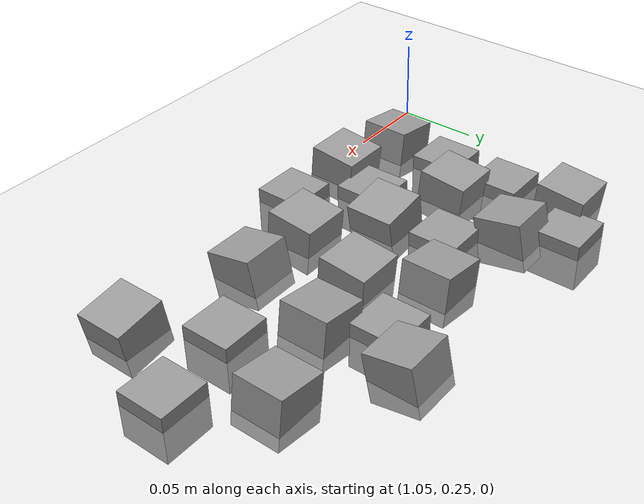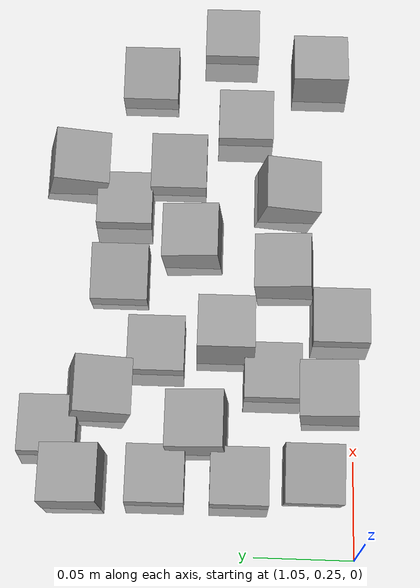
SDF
<sdf version="1.7">
 <world name="default">
  <model name="ground_plane">
   <static>1</static>
   <link name="link">
    <collision name="collision">
     <geometry><plane><normal>0 0 1</normal><size>100 100</size></plane></geometry>
     <surface><friction><ode><mu>100</mu><mu2>50</mu2></ode></friction></surface>
    </collision>
    <visual name="visual">
     <cast_shadows>0</cast_shadows>
     <geometry><plane><normal>0 0 1</normal><size>100 100</size></plane></geometry>
     <material>
      <script><uri>file://media/materials/scripts/gazebo.material</uri><name>Gazebo/Grey</name></script>
     </material>
    </visual>
   </link>
  </model>
  <model name="stone_road_11">
   <link name="link_0_clone_11">
    <inertial>
     <mass>1</mass>
     <inertia>
      <ixx>0.166667</ixx>
      <ixy>0</ixy>
      <ixz>0</ixz>
      <iyy>0.166667</iyy>
      <iyz>0</iyz>
      <izz>0.166667</izz>
     </inertia>
    </inertial>
    <pose>0.007758 0.071496 0.003778 0.2 -0 0</pose>
    <kinematic>1</kinematic>
    <visual name="visual">
     <geometry><box><size>0.03 0.03 0.03</size></box></geometry>
     <material>
      <lighting>1</lighting>
      <script><uri>file://media/materials/scripts/gazebo.material</uri><name>Gazebo/Grey</name></script>
      <shader type="pixel"><normal_map>__default__</normal_map></shader>
      <ambient>0.3 0.3 0.3 1</ambient>
      <diffuse>0.7 0.7 0.7 1</diffuse>
      <specular>0.01 0.01 0.01 1</specular>
      <emissive>0 0 0 1</emissive>
     </material>
    </visual>
    <collision name="collision">
     <geometry><box><size>0.03 0.03 0.03</size></box></geometry>
     <surface>
      <friction>
       <ode><mu>1</mu><mu2>1</mu2><fdir1>0 0 0</fdir1><slip1>0</slip1><slip2>0</slip2></ode>
       <torsional>
        <coefficient>1</coefficient>
        <patch_radius>0</patch_radius>
        <surface_radius>0</surface_radius>
        <use_patch_radius>1</use_patch_radius>
        <ode><slip>0</slip></ode>
       </torsional>
      </friction>
      <bounce><restitution_coefficient>0</restitution_coefficient><threshold>1e+06</threshold></bounce>
      <contact>
       <collide_without_contact>0</collide_without_contact>
       <collide_without_contact_bitmask>1</collide_without_contact_bitmask>
       <collide_bitmask>1</collide_bitmask>
       <ode>
        <soft_cfm>0</soft_cfm>
        <soft_erp>0.2</soft_erp>
        <kp>1e+13</kp>
        <kd>1</kd>
        <max_vel>0.01</max_vel>
        <min_depth>0</min_depth>
       </ode>
       <bullet>
        <split_impulse>1</split_impulse>
        <split_impulse_penetration_threshold>-0.01</split_impulse_penetration_threshold>
        <soft_cfm>0</soft_cfm>
        <soft_erp>0.2</soft_erp>
        <kp>1e+13</kp>
        <kd>1</kd>
       </bullet>
      </contact>
     </surface>
    </collision>
   </link>
   <link name="link_0_clone_2_clone_1">
    <inertial>
     <mass>1</mass>
     <inertia>
      <ixx>0.166667</ixx>
      <ixy>0</ixy>
      <ixz>0</ixz>
      <iyy>0.166667</iyy>
      <iyz>0</iyz>
      <izz>0.166667</izz>
     </inertia>
    </inertial>
    <pose>0.041447 0.006316 0.003778 0 0.15 0</pose>
    <kinematic>1</kinematic>
    <visual name="visual">
     <geometry><box><size>0.03 0.03 0.03</size></box></geometry>
     <material>
      <lighting>1</lighting>
      <script><uri>file://media/materials/scripts/gazebo.material</uri><name>Gazebo/Grey</name></script>
      <shader type="pixel"><normal_map>__default__</normal_map></shader>
      <ambient>0.3 0.3 0.3 1</ambient>
      <diffuse>0.7 0.7 0.7 1</diffuse>
      <specular>0.01 0.01 0.01 1</specular>
      <emissive>0 0 0 1</emissive>
     </material>
    </visual>
    <collision name="collision">
     <geometry><box><size>0.03 0.03 0.03</size></box></geometry>
     <surface>
      <friction>
       <ode><mu>1</mu><mu2>1</mu2><fdir1>0 0 0</fdir1><slip1>0</slip1><slip2>0</slip2></ode>
       <torsional>
        <coefficient>1</coefficient>
        <patch_radius>0</patch_radius>
        <surface_radius>0</surface_radius>
        <use_patch_radius>1</use_patch_radius>
        <ode><slip>0</slip></ode>
       </torsional>
      </friction>
      <bounce><restitution_coefficient>0</restitution_coefficient><threshold>1e+06</threshold></bounce>
      <contact>
       <collide_without_contact>0</collide_without_contact>
       <collide_without_contact_bitmask>1</collide_without_contact_bitmask>
       <collide_bitmask>1</collide_bitmask>
       <ode>
        <soft_cfm>0</soft_cfm>
        <soft_erp>0.2</soft_erp>
        <kp>1e+13</kp>
        <kd>1</kd>
        <max_vel>0.01</max_vel>
        <min_depth>0</min_depth>
       </ode>
       <bullet>
        <split_impulse>1</split_impulse>
        <split_impulse_penetration_threshold>-0.01</split_impulse_penetration_threshold>
        <soft_cfm>0</soft_cfm>
        <soft_erp>0.2</soft_erp>
        <kp>1e+13</kp>
        <kd>1</kd>
       </bullet>
      </contact>
     </surface>
    </collision>
   </link>
   <link name="link_0_clone_2_clone_2_clone">
    <inertial>
     <mass>1</mass>
     <inertia>
      <ixx>0.166667</ixx>
      <ixy>0</ixy>
      <ixz>0</ixz>
      <iyy>0.166667</iyy>
      <iyz>0</iyz>
      <izz>0.166667</izz>
     </inertia>
    </inertial>
    <pose>0.189059 0.051135 0.003778 0 -0.15 0</pose>
    <kinematic>1</kinematic>
    <visual name="visual">
     <geometry><box><size>0.03 0.03 0.03</size></box></geometry>
     <material>
      <lighting>1</lighting>
      <script><uri>file://media/materials/scripts/gazebo.material</uri><name>Gazebo/Grey</name></script>
      <shader type="pixel"><normal_map>__default__</normal_map></shader>
      <ambient>0.3 0.3 0.3 1</ambient>
      <diffuse>0.7 0.7 0.7 1</diffuse>
      <specular>0.01 0.01 0.01 1</specular>
      <emissive>0 0 0 1</emissive>
     </material>
    </visual>
    <collision name="collision">
     <geometry><box><size>0.03 0.03 0.03</size></box></geometry>
     <surface>
      <friction>
       <ode><mu>1</mu><mu2>1</mu2><fdir1>0 0 0</fdir1><slip1>0</slip1><slip2>0</slip2></ode>
       <torsional>
        <coefficient>1</coefficient>
        <patch_radius>0</patch_radius>
        <surface_radius>0</surface_radius>
        <use_patch_radius>1</use_patch_radius>
        <ode><slip>0</slip></ode>
       </torsional>
      </friction>
      <bounce><restitution_coefficient>0</restitution_coefficient><threshold>1e+06</threshold></bounce>
      <contact>
       <collide_without_contact>0</collide_without_contact>
       <collide_without_contact_bitmask>1</collide_without_contact_bitmask>
       <collide_bitmask>1</collide_bitmask>
       <ode>
        <soft_cfm>0</soft_cfm>
        <soft_erp>0.2</soft_erp>
        <kp>1e+13</kp>
        <kd>1</kd>
        <max_vel>0.01</max_vel>
        <min_depth>0</min_depth>
       </ode>
       <bullet>
        <split_impulse>1</split_impulse>
        <split_impulse_penetration_threshold>-0.01</split_impulse_penetration_threshold>
        <soft_cfm>0</soft_cfm>
        <soft_erp>0.2</soft_erp>
        <kp>1e+13</kp>
        <kd>1</kd>
       </bullet>
      </contact>
     </surface>
    </collision>
   </link>
   <link name="link_0_clone_2_clone_2_clone_0">
    <inertial>
     <mass>1</mass>
     <inertia>
      <ixx>0.166667</ixx>
      <ixy>0</ixy>
      <ixz>0</ixz>
      <iyy>0.166667</iyy>
      <iyz>0</iyz>
      <izz>0.166667</izz>
     </inertia>
    </inertial>
    <pose>-0.032874 -0.039714 0.003778 0 -0.15 0</pose>
    <kinematic>1</kinematic>
    <visual name="visual">
     <geometry><box><size>0.03 0.03 0.03</size></box></geometry>
     <material>
      <lighting>1</lighting>
      <script><uri>file://media/materials/scripts/gazebo.material</uri><name>Gazebo/Grey</name></script>
      <shader type="pixel"><normal_map>__default__</normal_map></shader>
      <ambient>0.3 0.3 0.3 1</ambient>
      <diffuse>0.7 0.7 0.7 1</diffuse>
      <specular>0.01 0.01 0.01 1</specular>
      <emissive>0 0 0 1</emissive>
     </material>
    </visual>
    <collision name="collision">
     <geometry><box><size>0.03 0.03 0.03</size></box></geometry>
     <surface>
      <friction>
       <ode><mu>1</mu><mu2>1</mu2><fdir1>0 0 0</fdir1><slip1>0</slip1><slip2>0</slip2></ode>
       <torsional>
        <coefficient>1</coefficient>
        <patch_radius>0</patch_radius>
        <surface_radius>0</surface_radius>
        <use_patch_radius>1</use_patch_radius>
        <ode><slip>0</slip></ode>
       </torsional>
      </friction>
      <bounce><restitution_coefficient>0</restitution_coefficient><threshold>1e+06</threshold></bounce>
      <contact>
       <collide_without_contact>0</collide_without_contact>
       <collide_without_contact_bitmask>1</collide_without_contact_bitmask>
       <collide_bitmask>1</collide_bitmask>
       <ode>
        <soft_cfm>0</soft_cfm>
        <soft_erp>0.2</soft_erp>
        <kp>1e+13</kp>
        <kd>1</kd>
        <max_vel>0.01</max_vel>
        <min_depth>0</min_depth>
       </ode>
       <bullet>
        <split_impulse>1</split_impulse>
        <split_impulse_penetration_threshold>-0.01</split_impulse_penetration_threshold>
        <soft_cfm>0</soft_cfm>
        <soft_erp>0.2</soft_erp>
        <kp>1e+13</kp>
        <kd>1</kd>
       </bullet>
      </contact>
     </surface>
    </collision>
   </link>
   <link name="link_0_clone_2_clone_2_clone_13_clone_clone_0">
    <inertial>
     <mass>1</mass>
     <inertia>
      <ixx>0.166667</ixx>
      <ixy>0</ixy>
      <ixz>0</ixz>
      <iyy>0.166667</iyy>
      <iyz>0</iyz>
      <izz>0.166667</izz>
     </inertia>
    </inertial>
    <pose>0.094072 0.02539 0.003778 -0.1 0 0</pose>
    <kinematic>1</kinematic>
    <visual name="visual">
     <geometry><box><size>0.03 0.03 0.03</size></box></geometry>
     <material>
      <lighting>1</lighting>
      <script><uri>file://media/materials/scripts/gazebo.material</uri><name>Gazebo/Grey</name></script>
      <shader type="pixel"><normal_map>__default__</normal_map></shader>
      <ambient>0.3 0.3 0.3 1</ambient>
      <diffuse>0.7 0.7 0.7 1</diffuse>
      <specular>0.01 0.01 0.01 1</specular>
      <emissive>0 0 0 1</emissive>
     </material>
    </visual>
    <collision name="collision">
     <geometry><box><size>0.03 0.03 0.03</size></box></geometry>
     <surface>
      <friction>
       <ode><mu>1</mu><mu2>1</mu2><fdir1>0 0 0</fdir1><slip1>0</slip1><slip2>0</slip2></ode>
       <torsional>
        <coefficient>1</coefficient>
        <patch_radius>0</patch_radius>
        <surface_radius>0</surface_radius>
        <use_patch_radius>1</use_patch_radius>
        <ode><slip>0</slip></ode>
       </torsional>
      </friction>
      <bounce><restitution_coefficient>0</restitution_coefficient><threshold>1e+06</threshold></bounce>
      <contact>
       <collide_without_contact>0</collide_without_contact>
       <collide_without_contact_bitmask>1</collide_without_contact_bitmask>
       <collide_bitmask>1</collide_bitmask>
       <ode>
        <soft_cfm>0</soft_cfm>
        <soft_erp>0.2</soft_erp>
        <kp>1e+13</kp>
        <kd>1</kd>
        <max_vel>0.01</max_vel>
        <min_depth>0</min_depth>
       </ode>
       <bullet>
        <split_impulse>1</split_impulse>
        <split_impulse_penetration_threshold>-0.01</split_impulse_penetration_threshold>
        <soft_cfm>0</soft_cfm>
        <soft_erp>0.2</soft_erp>
        <kp>1e+13</kp>
        <kd>1</kd>
       </bullet>
      </contact>
     </surface>
    </collision>
   </link>
   <link name="link_0_clone_2_clone_2_clone_13_clone_clone_16_clone_0">
    <inertial>
     <mass>1</mass>
     <inertia>
      <ixx>0.166667</ixx>
      <ixy>0</ixy>
      <ixz>0</ixz>
      <iyy>0.166667</iyy>
      <iyz>0</iyz>
      <izz>0.166667</izz>
     </inertia>
    </inertial>
    <pose>-0.010782 0.09679 -0.006222 0 -0 0</pose>
    <kinematic>1</kinematic>
    <visual name="visual">
     <geometry><box><size>0.03 0.03 0.03</size></box></geometry>
     <material>
      <lighting>1</lighting>
      <script><uri>file://media/materials/scripts/gazebo.material</uri><name>Gazebo/Grey</name></script>
      <shader type="pixel"><normal_map>__default__</normal_map></shader>
      <ambient>0.3 0.3 0.3 1</ambient>
      <diffuse>0.7 0.7 0.7 1</diffuse>
      <specular>0.01 0.01 0.01 1</specular>
      <emissive>0 0 0 1</emissive>
     </material>
    </visual>
    <collision name="collision">
     <geometry><box><size>0.03 0.03 0.03</size></box></geometry>
     <surface>
      <friction>
       <ode><mu>1</mu><mu2>1</mu2><fdir1>0 0 0</fdir1><slip1>0</slip1><slip2>0</slip2></ode>
       <torsional>
        <coefficient>1</coefficient>
        <patch_radius>0</patch_radius>
        <surface_radius>0</surface_radius>
        <use_patch_radius>1</use_patch_radius>
        <ode><slip>0</slip></ode>
       </torsional>
      </friction>
      <bounce><restitution_coefficient>0</restitution_coefficient><threshold>1e+06</threshold></bounce>
      <contact>
       <collide_without_contact>0</collide_without_contact>
       <collide_without_contact_bitmask>1</collide_without_contact_bitmask>
       <collide_bitmask>1</collide_bitmask>
       <ode>
        <soft_cfm>0</soft_cfm>
        <soft_erp>0.2</soft_erp>
        <kp>1e+13</kp>
        <kd>1</kd>
        <max_vel>0.01</max_vel>
        <min_depth>0</min_depth>
       </ode>
       <bullet>
        <split_impulse>1</split_impulse>
        <split_impulse_penetration_threshold>-0.01</split_impulse_penetration_threshold>
        <soft_cfm>0</soft_cfm>
        <soft_erp>0.2</soft_erp>
        <kp>1e+13</kp>
        <kd>1</kd>
       </bullet>
      </contact>
     </surface>
    </collision>
   </link>
   <link name="link_0_clone_2_clone_2_clone_13_clone_clone_16_clone_1">
    <inertial>
     <mass>1</mass>
     <inertia>
      <ixx>0.166667</ixx>
      <ixy>0</ixy>
      <ixz>0</ixz>
      <iyy>0.166667</iyy>
      <iyz>0</iyz>
      <izz>0.166667</izz>
     </inertia>
    </inertial>
    <pose>0.033787 0.042837 -0.006222 0 -0 0</pose>
    <kinematic>1</kinematic>
    <visual name="visual">
     <geometry><box><size>0.03 0.03 0.03</size></box></geometry>
     <material>
      <lighting>1</lighting>
      <script><uri>file://media/materials/scripts/gazebo.material</uri><name>Gazebo/Grey</name></script>
      <shader type="pixel"><normal_map>__default__</normal_map></shader>
      <ambient>0.3 0.3 0.3 1</ambient>
      <diffuse>0.7 0.7 0.7 1</diffuse>
      <specular>0.01 0.01 0.01 1</specular>
      <emissive>0 0 0 1</emissive>
     </material>
    </visual>
    <collision name="collision">
     <geometry><box><size>0.03 0.03 0.03</size></box></geometry>
     <surface>
      <friction>
       <ode><mu>1</mu><mu2>1</mu2><fdir1>0 0 0</fdir1><slip1>0</slip1><slip2>0</slip2></ode>
       <torsional>
        <coefficient>1</coefficient>
        <patch_radius>0</patch_radius>
        <surface_radius>0</surface_radius>
        <use_patch_radius>1</use_patch_radius>
        <ode><slip>0</slip></ode>
       </torsional>
      </friction>
      <bounce><restitution_coefficient>0</restitution_coefficient><threshold>1e+06</threshold></bounce>
      <contact>
       <collide_without_contact>0</collide_without_contact>
       <collide_without_contact_bitmask>1</collide_without_contact_bitmask>
       <collide_bitmask>1</collide_bitmask>
       <ode>
        <soft_cfm>0</soft_cfm>
        <soft_erp>0.2</soft_erp>
        <kp>1e+13</kp>
        <kd>1</kd>
        <max_vel>0.01</max_vel>
        <min_depth>0</min_depth>
       </ode>
       <bullet>
        <split_impulse>1</split_impulse>
        <split_impulse_penetration_threshold>-0.01</split_impulse_penetration_threshold>
        <soft_cfm>0</soft_cfm>
        <soft_erp>0.2</soft_erp>
        <kp>1e+13</kp>
        <kd>1</kd>
       </bullet>
      </contact>
     </surface>
    </collision>
   </link>
   <link name="link_0_clone_2_clone_2_clone_13_clone_clone_16_clone_13">
    <inertial>
     <mass>1</mass>
     <inertia>
      <ixx>0.166667</ixx>
      <ixy>0</ixy>
      <ixz>0</ixz>
      <iyy>0.166667</iyy>
      <iyz>0</iyz>
      <izz>0.166667</izz>
     </inertia>
    </inertial>
    <pose>0.168013 -0.00203 -0.006222 0 -0 0</pose>
    <kinematic>1</kinematic>
    <visual name="visual">
     <geometry><box><size>0.03 0.03 0.03</size></box></geometry>
     <material>
      <lighting>1</lighting>
      <script><uri>file://media/materials/scripts/gazebo.material</uri><name>Gazebo/Grey</name></script>
      <shader type="pixel"><normal_map>__default__</normal_map></shader>
      <ambient>0.3 0.3 0.3 1</ambient>
      <diffuse>0.7 0.7 0.7 1</diffuse>
      <specular>0.01 0.01 0.01 1</specular>
      <emissive>0 0 0 1</emissive>
     </material>
    </visual>
    <collision name="collision">
     <geometry><box><size>0.03 0.03 0.03</size></box></geometry>
     <surface>
      <friction>
       <ode><mu>1</mu><mu2>1</mu2><fdir1>0 0 0</fdir1><slip1>0</slip1><slip2>0</slip2></ode>
       <torsional>
        <coefficient>1</coefficient>
        <patch_radius>0</patch_radius>
        <surface_radius>0</surface_radius>
        <use_patch_radius>1</use_patch_radius>
        <ode><slip>0</slip></ode>
       </torsional>
      </friction>
      <bounce><restitution_coefficient>0</restitution_coefficient><threshold>1e+06</threshold></bounce>
      <contact>
       <collide_without_contact>0</collide_without_contact>
       <collide_without_contact_bitmask>1</collide_without_contact_bitmask>
       <collide_bitmask>1</collide_bitmask>
       <ode>
        <soft_cfm>0</soft_cfm>
        <soft_erp>0.2</soft_erp>
        <kp>1e+13</kp>
        <kd>1</kd>
        <max_vel>0.01</max_vel>
        <min_depth>0</min_depth>
       </ode>
       <bullet>
        <split_impulse>1</split_impulse>
        <split_impulse_penetration_threshold>-0.01</split_impulse_penetration_threshold>
        <soft_cfm>0</soft_cfm>
        <soft_erp>0.2</soft_erp>
        <kp>1e+13</kp>
        <kd>1</kd>
       </bullet>
      </contact>
     </surface>
    </collision>
   </link>
   <link name="link_0_clone_2_clone_2_clone_13_clone_clone_16_clone_14">
    <inertial>
     <mass>1</mass>
     <inertia>
      <ixx>0.166667</ixx>
      <ixy>0</ixy>
      <ixz>0</ixz>
      <iyy>0.166667</iyy>
      <iyz>0</iyz>
      <izz>0.166667</izz>
     </inertia>
    </inertial>
    <pose>0.051911 -0.054424 -0.006222 0 -0 0</pose>
    <kinematic>1</kinematic>
    <visual name="visual">
     <geometry><box><size>0.03 0.03 0.03</size></box></geometry>
     <material>
      <lighting>1</lighting>
      <script><uri>file://media/materials/scripts/gazebo.material</uri><name>Gazebo/Grey</name></script>
      <shader type="pixel"><normal_map>__default__</normal_map></shader>
      <ambient>0.3 0.3 0.3 1</ambient>
      <diffuse>0.7 0.7 0.7 1</diffuse>
      <specular>0.01 0.01 0.01 1</specular>
      <emissive>0 0 0 1</emissive>
     </material>
    </visual>
    <collision name="collision">
     <geometry><box><size>0.03 0.03 0.03</size></box></geometry>
     <surface>
      <friction>
       <ode><mu>1</mu><mu2>1</mu2><fdir1>0 0 0</fdir1><slip1>0</slip1><slip2>0</slip2></ode>
       <torsional>
        <coefficient>1</coefficient>
        <patch_radius>0</patch_radius>
        <surface_radius>0</surface_radius>
        <use_patch_radius>1</use_patch_radius>
        <ode><slip>0</slip></ode>
       </torsional>
      </friction>
      <bounce><restitution_coefficient>0</restitution_coefficient><threshold>1e+06</threshold></bounce>
      <contact>
       <collide_without_contact>0</collide_without_contact>
       <collide_without_contact_bitmask>1</collide_without_contact_bitmask>
       <collide_bitmask>1</collide_bitmask>
       <ode>
        <soft_cfm>0</soft_cfm>
        <soft_erp>0.2</soft_erp>
        <kp>1e+13</kp>
        <kd>1</kd>
        <max_vel>0.01</max_vel>
        <min_depth>0</min_depth>
       </ode>
       <bullet>
        <split_impulse>1</split_impulse>
        <split_impulse_penetration_threshold>-0.01</split_impulse_penetration_threshold>
        <soft_cfm>0</soft_cfm>
        <soft_erp>0.2</soft_erp>
        <kp>1e+13</kp>
        <kd>1</kd>
       </bullet>
      </contact>
     </surface>
    </collision>
   </link>
   <link name="link_0_clone_2_clone_2_clone_13_clone_clone_16_clone_19">
    <inertial>
     <mass>1</mass>
     <inertia>
      <ixx>0.166667</ixx>
      <ixy>0</ixy>
      <ixz>0</ixz>
      <iyy>0.166667</iyy>
      <iyz>0</iyz>
      <izz>0.166667</izz>
     </inertia>
    </inertial>
    <pose>0.219442 0.006622 -0.006222 0 -0 0</pose>
    <kinematic>1</kinematic>
    <visual name="visual">
     <geometry><box><size>0.03 0.03 0.03</size></box></geometry>
     <material>
      <lighting>1</lighting>
      <script><uri>file://media/materials/scripts/gazebo.material</uri><name>Gazebo/Grey</name></script>
      <shader type="pixel"><normal_map>__default__</normal_map></shader>
      <ambient>0.3 0.3 0.3 1</ambient>
      <diffuse>0.7 0.7 0.7 1</diffuse>
      <specular>0.01 0.01 0.01 1</specular>
      <emissive>0 0 0 1</emissive>
     </material>
    </visual>
    <collision name="collision">
     <geometry><box><size>0.03 0.03 0.03</size></box></geometry>
     <surface>
      <friction>
       <ode><mu>1</mu><mu2>1</mu2><fdir1>0 0 0</fdir1><slip1>0</slip1><slip2>0</slip2></ode>
       <torsional>
        <coefficient>1</coefficient>
        <patch_radius>0</patch_radius>
        <surface_radius>0</surface_radius>
        <use_patch_radius>1</use_patch_radius>
        <ode><slip>0</slip></ode>
       </torsional>
      </friction>
      <bounce><restitution_coefficient>0</restitution_coefficient><threshold>1e+06</threshold></bounce>
      <contact>
       <collide_without_contact>0</collide_without_contact>
       <collide_without_contact_bitmask>1</collide_without_contact_bitmask>
       <collide_bitmask>1</collide_bitmask>
       <ode>
        <soft_cfm>0</soft_cfm>
        <soft_erp>0.2</soft_erp>
        <kp>1e+13</kp>
        <kd>1</kd>
        <max_vel>0.01</max_vel>
        <min_depth>0</min_depth>
       </ode>
       <bullet>
        <split_impulse>1</split_impulse>
        <split_impulse_penetration_threshold>-0.01</split_impulse_penetration_threshold>
        <soft_cfm>0</soft_cfm>
        <soft_erp>0.2</soft_erp>
        <kp>1e+13</kp>
        <kd>1</kd>
       </bullet>
      </contact>
     </surface>
    </collision>
   </link>
   <link name="link_0_clone_2_clone_2_clone_13_clone_clone_16_clone_2">
    <inertial>
     <mass>1</mass>
     <inertia>
      <ixx>0.166667</ixx>
      <ixy>0</ixy>
      <ixz>0</ixz>
      <iyy>0.166667</iyy>
      <iyz>0</iyz>
      <izz>0.166667</izz>
     </inertia>
    </inertial>
    <pose>-0.035128 0.040728 -0.006222 0 -0 0</pose>
    <kinematic>1</kinematic>
    <visual name="visual">
     <geometry><box><size>0.03 0.03 0.03</size></box></geometry>
     <material>
      <lighting>1</lighting>
      <script><uri>file://media/materials/scripts/gazebo.material</uri><name>Gazebo/Grey</name></script>
      <shader type="pixel"><normal_map>__default__</normal_map></shader>
      <ambient>0.3 0.3 0.3 1</ambient>
      <diffuse>0.7 0.7 0.7 1</diffuse>
      <specular>0.01 0.01 0.01 1</specular>
      <emissive>0 0 0 1</emissive>
     </material>
    </visual>
    <collision name="collision">
     <geometry><box><size>0.03 0.03 0.03</size></box></geometry>
     <surface>
      <friction>
       <ode><mu>1</mu><mu2>1</mu2><fdir1>0 0 0</fdir1><slip1>0</slip1><slip2>0</slip2></ode>
       <torsional>
        <coefficient>1</coefficient>
        <patch_radius>0</patch_radius>
        <surface_radius>0</surface_radius>
        <use_patch_radius>1</use_patch_radius>
        <ode><slip>0</slip></ode>
       </torsional>
      </friction>
      <bounce><restitution_coefficient>0</restitution_coefficient><threshold>1e+06</threshold></bounce>
      <contact>
       <collide_without_contact>0</collide_without_contact>
       <collide_without_contact_bitmask>1</collide_without_contact_bitmask>
       <collide_bitmask>1</collide_bitmask>
       <ode>
        <soft_cfm>0</soft_cfm>
        <soft_erp>0.2</soft_erp>
        <kp>1e+13</kp>
        <kd>1</kd>
        <max_vel>0.01</max_vel>
        <min_depth>0</min_depth>
       </ode>
       <bullet>
        <split_impulse>1</split_impulse>
        <split_impulse_penetration_threshold>-0.01</split_impulse_penetration_threshold>
        <soft_cfm>0</soft_cfm>
        <soft_erp>0.2</soft_erp>
        <kp>1e+13</kp>
        <kd>1</kd>
       </bullet>
      </contact>
     </surface>
    </collision>
   </link>
   <link name="link_0_clone_2_clone_2_clone_13_clone_clone_16_clone_20">
    <inertial>
     <mass>1</mass>
     <inertia>
      <ixx>0.166667</ixx>
      <ixy>0</ixy>
      <ixz>0</ixz>
      <iyy>0.166667</iyy>
      <iyz>0</iyz>
      <izz>0.166667</izz>
     </inertia>
    </inertial>
    <pose>0.115763 0.063063 -0.006222 0 -0 0</pose>
    <kinematic>1</kinematic>
    <visual name="visual">
     <geometry><box><size>0.03 0.03 0.03</size></box></geometry>
     <material>
      <lighting>1</lighting>
      <script><uri>file://media/materials/scripts/gazebo.material</uri><name>Gazebo/Grey</name></script>
      <shader type="pixel"><normal_map>__default__</normal_map></shader>
      <ambient>0.3 0.3 0.3 1</ambient>
      <diffuse>0.7 0.7 0.7 1</diffuse>
      <specular>0.01 0.01 0.01 1</specular>
      <emissive>0 0 0 1</emissive>
     </material>
    </visual>
    <collision name="collision">
     <geometry><box><size>0.03 0.03 0.03</size></box></geometry>
     <surface>
      <friction>
       <ode><mu>1</mu><mu2>1</mu2><fdir1>0 0 0</fdir1><slip1>0</slip1><slip2>0</slip2></ode>
       <torsional>
        <coefficient>1</coefficient>
        <patch_radius>0</patch_radius>
        <surface_radius>0</surface_radius>
        <use_patch_radius>1</use_patch_radius>
        <ode><slip>0</slip></ode>
       </torsional>
      </friction>
      <bounce><restitution_coefficient>0</restitution_coefficient><threshold>1e+06</threshold></bounce>
      <contact>
       <collide_without_contact>0</collide_without_contact>
       <collide_without_contact_bitmask>1</collide_without_contact_bitmask>
       <collide_bitmask>1</collide_bitmask>
       <ode>
        <soft_cfm>0</soft_cfm>
        <soft_erp>0.2</soft_erp>
        <kp>1e+13</kp>
        <kd>1</kd>
        <max_vel>0.01</max_vel>
        <min_depth>0</min_depth>
       </ode>
       <bullet>
        <split_impulse>1</split_impulse>
        <split_impulse_penetration_threshold>-0.01</split_impulse_penetration_threshold>
        <soft_cfm>0</soft_cfm>
        <soft_erp>0.2</soft_erp>
        <kp>1e+13</kp>
        <kd>1</kd>
       </bullet>
      </contact>
     </surface>
    </collision>
   </link>
   <link name="link_0_clone_2_clone_2_clone_13_clone_clone_16_clone_26">
    <inertial>
     <mass>1</mass>
     <inertia>
      <ixx>0.166667</ixx>
      <ixy>0</ixy>
      <ixz>0</ixz>
      <iyy>0.166667</iyy>
      <iyz>0</iyz>
      <izz>0.166667</izz>
     </inertia>
    </inertial>
    <pose>-0.035162 -0.002247 -0.006222 0 -0 0</pose>
    <kinematic>1</kinematic>
    <visual name="visual">
     <geometry><box><size>0.03 0.03 0.03</size></box></geometry>
     <material>
      <lighting>1</lighting>
      <script><uri>file://media/materials/scripts/gazebo.material</uri><name>Gazebo/Grey</name></script>
      <shader type="pixel"><normal_map>__default__</normal_map></shader>
      <ambient>0.3 0.3 0.3 1</ambient>
      <diffuse>0.7 0.7 0.7 1</diffuse>
      <specular>0.01 0.01 0.01 1</specular>
      <emissive>0 0 0 1</emissive>
     </material>
    </visual>
    <collision name="collision">
     <geometry><box><size>0.03 0.03 0.03</size></box></geometry>
     <surface>
      <friction>
       <ode><mu>1</mu><mu2>1</mu2><fdir1>0 0 0</fdir1><slip1>0</slip1><slip2>0</slip2></ode>
       <torsional>
        <coefficient>1</coefficient>
        <patch_radius>0</patch_radius>
        <surface_radius>0</surface_radius>
        <use_patch_radius>1</use_patch_radius>
        <ode><slip>0</slip></ode>
       </torsional>
      </friction>
      <bounce><restitution_coefficient>0</restitution_coefficient><threshold>1e+06</threshold></bounce>
      <contact>
       <collide_without_contact>0</collide_without_contact>
       <collide_without_contact_bitmask>1</collide_without_contact_bitmask>
       <collide_bitmask>1</collide_bitmask>
       <ode>
        <soft_cfm>0</soft_cfm>
        <soft_erp>0.2</soft_erp>
        <kp>1e+13</kp>
        <kd>1</kd>
        <max_vel>0.01</max_vel>
        <min_depth>0</min_depth>
       </ode>
       <bullet>
        <split_impulse>1</split_impulse>
        <split_impulse_penetration_threshold>-0.01</split_impulse_penetration_threshold>
        <soft_cfm>0</soft_cfm>
        <soft_erp>0.2</soft_erp>
        <kp>1e+13</kp>
        <kd>1</kd>
       </bullet>
      </contact>
     </surface>
    </collision>
   </link>
   <link name="link_0_clone_2_clone_2_clone_13_clone_clone_16_clone_6">
    <inertial>
     <mass>1</mass>
     <inertia>
      <ixx>0.166667</ixx>
      <ixy>0</ixy>
      <ixz>0</ixz>
      <iyy>0.166667</iyy>
      <iyz>0</iyz>
      <izz>0.166667</izz>
     </inertia>
    </inertial>
    <pose>0.020774 -0.018727 -0.006222 0 -0 0</pose>
    <kinematic>1</kinematic>
    <visual name="visual">
     <geometry><box><size>0.03 0.03 0.03</size></box></geometry>
     <material>
      <lighting>1</lighting>
      <script><uri>file://media/materials/scripts/gazebo.material</uri><name>Gazebo/Grey</name></script>
      <shader type="pixel"><normal_map>__default__</normal_map></shader>
      <ambient>0.3 0.3 0.3 1</ambient>
      <diffuse>0.7 0.7 0.7 1</diffuse>
      <specular>0.01 0.01 0.01 1</specular>
      <emissive>0 0 0 1</emissive>
     </material>
    </visual>
    <collision name="collision">
     <geometry><box><size>0.03 0.03 0.03</size></box></geometry>
     <surface>
      <friction>
       <ode><mu>1</mu><mu2>1</mu2><fdir1>0 0 0</fdir1><slip1>0</slip1><slip2>0</slip2></ode>
       <torsional>
        <coefficient>1</coefficient>
        <patch_radius>0</patch_radius>
        <surface_radius>0</surface_radius>
        <use_patch_radius>1</use_patch_radius>
        <ode><slip>0</slip></ode>
       </torsional>
      </friction>
      <bounce><restitution_coefficient>0</restitution_coefficient><threshold>1e+06</threshold></bounce>
      <contact>
       <collide_without_contact>0</collide_without_contact>
       <collide_without_contact_bitmask>1</collide_without_contact_bitmask>
       <collide_bitmask>1</collide_bitmask>
       <ode>
        <soft_cfm>0</soft_cfm>
        <soft_erp>0.2</soft_erp>
        <kp>1e+13</kp>
        <kd>1</kd>
        <max_vel>0.01</max_vel>
        <min_depth>0</min_depth>
       </ode>
       <bullet>
        <split_impulse>1</split_impulse>
        <split_impulse_penetration_threshold>-0.01</split_impulse_penetration_threshold>
        <soft_cfm>0</soft_cfm>
        <soft_erp>0.2</soft_erp>
        <kp>1e+13</kp>
        <kd>1</kd>
       </bullet>
      </contact>
     </surface>
    </collision>
   </link>
   <link name="link_0_clone_2_clone_2_clone_13_clone_clone_2">
    <inertial>
     <mass>1</mass>
     <inertia>
      <ixx>0.166667</ixx>
      <ixy>0</ixy>
      <ixz>0</ixz>
      <iyy>0.166667</iyy>
      <iyz>0</iyz>
      <izz>0.166667</izz>
     </inertia>
    </inertial>
    <pose>-0.037997 0.082571 0.003778 -0.1 0 0</pose>
    <kinematic>1</kinematic>
    <visual name="visual">
     <geometry><box><size>0.03 0.03 0.03</size></box></geometry>
     <material>
      <lighting>1</lighting>
      <script><uri>file://media/materials/scripts/gazebo.material</uri><name>Gazebo/Grey</name></script>
      <shader type="pixel"><normal_map>__default__</normal_map></shader>
      <ambient>0.3 0.3 0.3 1</ambient>
      <diffuse>0.7 0.7 0.7 1</diffuse>
      <specular>0.01 0.01 0.01 1</specular>
      <emissive>0 0 0 1</emissive>
     </material>
    </visual>
    <collision name="collision">
     <geometry><box><size>0.03 0.03 0.03</size></box></geometry>
     <surface>
      <friction>
       <ode><mu>1</mu><mu2>1</mu2><fdir1>0 0 0</fdir1><slip1>0</slip1><slip2>0</slip2></ode>
       <torsional>
        <coefficient>1</coefficient>
        <patch_radius>0</patch_radius>
        <surface_radius>0</surface_radius>
        <use_patch_radius>1</use_patch_radius>
        <ode><slip>0</slip></ode>
       </torsional>
      </friction>
      <bounce><restitution_coefficient>0</restitution_coefficient><threshold>1e+06</threshold></bounce>
      <contact>
       <collide_without_contact>0</collide_without_contact>
       <collide_without_contact_bitmask>1</collide_without_contact_bitmask>
       <collide_bitmask>1</collide_bitmask>
       <ode>
        <soft_cfm>0</soft_cfm>
        <soft_erp>0.2</soft_erp>
        <kp>1e+13</kp>
        <kd>1</kd>
        <max_vel>0.01</max_vel>
        <min_depth>0</min_depth>
       </ode>
       <bullet>
        <split_impulse>1</split_impulse>
        <split_impulse_penetration_threshold>-0.01</split_impulse_penetration_threshold>
        <soft_cfm>0</soft_cfm>
        <soft_erp>0.2</soft_erp>
        <kp>1e+13</kp>
        <kd>1</kd>
       </bullet>
      </contact>
     </surface>
    </collision>
   </link>
   <link name="link_0_clone_2_clone_2_clone_13_clone_clone_3">
    <inertial>
     <mass>1</mass>
     <inertia>
      <ixx>0.166667</ixx>
      <ixy>0</ixy>
      <ixz>0</ixz>
      <iyy>0.166667</iyy>
      <iyz>0</iyz>
      <izz>0.166667</izz>
     </inertia>
    </inertial>
    <pose>-0.008408 0.020239 0.003778 -0.1 0 0</pose>
    <kinematic>1</kinematic>
    <visual name="visual">
     <geometry><box><size>0.03 0.03 0.03</size></box></geometry>
     <material>
      <lighting>1</lighting>
      <script><uri>file://media/materials/scripts/gazebo.material</uri><name>Gazebo/Grey</name></script>
      <shader type="pixel"><normal_map>__default__</normal_map></shader>
      <ambient>0.3 0.3 0.3 1</ambient>
      <diffuse>0.7 0.7 0.7 1</diffuse>
      <specular>0.01 0.01 0.01 1</specular>
      <emissive>0 0 0 1</emissive>
     </material>
    </visual>
    <collision name="collision">
     <geometry><box><size>0.03 0.03 0.03</size></box></geometry>
     <surface>
      <friction>
       <ode><mu>1</mu><mu2>1</mu2><fdir1>0 0 0</fdir1><slip1>0</slip1><slip2>0</slip2></ode>
       <torsional>
        <coefficient>1</coefficient>
        <patch_radius>0</patch_radius>
        <surface_radius>0</surface_radius>
        <use_patch_radius>1</use_patch_radius>
        <ode><slip>0</slip></ode>
       </torsional>
      </friction>
      <bounce><restitution_coefficient>0</restitution_coefficient><threshold>1e+06</threshold></bounce>
      <contact>
       <collide_without_contact>0</collide_without_contact>
       <collide_without_contact_bitmask>1</collide_without_contact_bitmask>
       <collide_bitmask>1</collide_bitmask>
       <ode>
        <soft_cfm>0</soft_cfm>
        <soft_erp>0.2</soft_erp>
        <kp>1e+13</kp>
        <kd>1</kd>
        <max_vel>0.01</max_vel>
        <min_depth>0</min_depth>
       </ode>
       <bullet>
        <split_impulse>1</split_impulse>
        <split_impulse_penetration_threshold>-0.01</split_impulse_penetration_threshold>
        <soft_cfm>0</soft_cfm>
        <soft_erp>0.2</soft_erp>
        <kp>1e+13</kp>
        <kd>1</kd>
       </bullet>
      </contact>
     </surface>
    </collision>
   </link>
   <link name="link_0_clone_2_clone_2_clone_13_clone_clone_4">
    <inertial>
     <mass>1</mass>
     <inertia>
      <ixx>0.166667</ixx>
      <ixy>0</ixy>
      <ixz>0</ixz>
      <iyy>0.166667</iyy>
      <iyz>0</iyz>
      <izz>0.166667</izz>
     </inertia>
    </inertial>
    <pose>0.078198 -0.024053 0.003778 -0.1 0 0</pose>
    <kinematic>1</kinematic>
    <visual name="visual">
     <geometry><box><size>0.03 0.03 0.03</size></box></geometry>
     <material>
      <lighting>1</lighting>
      <script><uri>file://media/materials/scripts/gazebo.material</uri><name>Gazebo/Grey</name></script>
      <shader type="pixel"><normal_map>__default__</normal_map></shader>
      <ambient>0.3 0.3 0.3 1</ambient>
      <diffuse>0.7 0.7 0.7 1</diffuse>
      <specular>0.01 0.01 0.01 1</specular>
      <emissive>0 0 0 1</emissive>
     </material>
    </visual>
    <collision name="collision">
     <geometry><box><size>0.03 0.03 0.03</size></box></geometry>
     <surface>
      <friction>
       <ode><mu>1</mu><mu2>1</mu2><fdir1>0 0 0</fdir1><slip1>0</slip1><slip2>0</slip2></ode>
       <torsional>
        <coefficient>1</coefficient>
        <patch_radius>0</patch_radius>
        <surface_radius>0</surface_radius>
        <use_patch_radius>1</use_patch_radius>
        <ode><slip>0</slip></ode>
       </torsional>
      </friction>
      <bounce><restitution_coefficient>0</restitution_coefficient><threshold>1e+06</threshold></bounce>
      <contact>
       <collide_without_contact>0</collide_without_contact>
       <collide_without_contact_bitmask>1</collide_without_contact_bitmask>
       <collide_bitmask>1</collide_bitmask>
       <ode>
        <soft_cfm>0</soft_cfm>
        <soft_erp>0.2</soft_erp>
        <kp>1e+13</kp>
        <kd>1</kd>
        <max_vel>0.01</max_vel>
        <min_depth>0</min_depth>
       </ode>
       <bullet>
        <split_impulse>1</split_impulse>
        <split_impulse_penetration_threshold>-0.01</split_impulse_penetration_threshold>
        <soft_cfm>0</soft_cfm>
        <soft_erp>0.2</soft_erp>
        <kp>1e+13</kp>
        <kd>1</kd>
       </bullet>
      </contact>
     </surface>
    </collision>
   </link>
   <link name="link_0_clone_2_clone_2_clone_13_clone_clone_6">
    <inertial>
     <mass>1</mass>
     <inertia>
      <ixx>0.166667</ixx>
      <ixy>0</ixy>
      <ixz>0</ixz>
      <iyy>0.166667</iyy>
      <iyz>0</iyz>
      <izz>0.166667</izz>
     </inertia>
    </inertial>
    <pose>0.009445 -0.048118 0.003778 -0.1 0 0</pose>
    <kinematic>1</kinematic>
    <visual name="visual">
     <geometry><box><size>0.03 0.03 0.03</size></box></geometry>
     <material>
      <lighting>1</lighting>
      <script><uri>file://media/materials/scripts/gazebo.material</uri><name>Gazebo/Grey</name></script>
      <shader type="pixel"><normal_map>__default__</normal_map></shader>
      <ambient>0.3 0.3 0.3 1</ambient>
      <diffuse>0.7 0.7 0.7 1</diffuse>
      <specular>0.01 0.01 0.01 1</specular>
      <emissive>0 0 0 1</emissive>
     </material>
    </visual>
    <collision name="collision">
     <geometry><box><size>0.03 0.03 0.03</size></box></geometry>
     <surface>
      <friction>
       <ode><mu>1</mu><mu2>1</mu2><fdir1>0 0 0</fdir1><slip1>0</slip1><slip2>0</slip2></ode>
       <torsional>
        <coefficient>1</coefficient>
        <patch_radius>0</patch_radius>
        <surface_radius>0</surface_radius>
        <use_patch_radius>1</use_patch_radius>
        <ode><slip>0</slip></ode>
       </torsional>
      </friction>
      <bounce><restitution_coefficient>0</restitution_coefficient><threshold>1e+06</threshold></bounce>
      <contact>
       <collide_without_contact>0</collide_without_contact>
       <collide_without_contact_bitmask>1</collide_without_contact_bitmask>
       <collide_bitmask>1</collide_bitmask>
       <ode>
        <soft_cfm>0</soft_cfm>
        <soft_erp>0.2</soft_erp>
        <kp>1e+13</kp>
        <kd>1</kd>
        <max_vel>0.01</max_vel>
        <min_depth>0</min_depth>
       </ode>
       <bullet>
        <split_impulse>1</split_impulse>
        <split_impulse_penetration_threshold>-0.01</split_impulse_penetration_threshold>
        <soft_cfm>0</soft_cfm>
        <soft_erp>0.2</soft_erp>
        <kp>1e+13</kp>
        <kd>1</kd>
       </bullet>
      </contact>
     </surface>
    </collision>
   </link>
   <link name="link_0_clone_2_clone_2_clone_6">
    <inertial>
     <mass>1</mass>
     <inertia>
      <ixx>0.166667</ixx>
      <ixy>0</ixy>
      <ixz>0</ixz>
      <iyy>0.166667</iyy>
      <iyz>0</iyz>
      <izz>0.166667</izz>
     </inertia>
    </inertial>
    <pose>0.136141 0.034017 0.003778 0 -0.15 0</pose>
    <kinematic>1</kinematic>
    <visual name="visual">
     <geometry><box><size>0.03 0.03 0.03</size></box></geometry>
     <material>
      <lighting>1</lighting>
      <script><uri>file://media/materials/scripts/gazebo.material</uri><name>Gazebo/Grey</name></script>
      <shader type="pixel"><normal_map>__default__</normal_map></shader>
      <ambient>0.3 0.3 0.3 1</ambient>
      <diffuse>0.7 0.7 0.7 1</diffuse>
      <specular>0.01 0.01 0.01 1</specular>
      <emissive>0 0 0 1</emissive>
     </material>
    </visual>
    <collision name="collision">
     <geometry><box><size>0.03 0.03 0.03</size></box></geometry>
     <surface>
      <friction>
       <ode><mu>1</mu><mu2>1</mu2><fdir1>0 0 0</fdir1><slip1>0</slip1><slip2>0</slip2></ode>
       <torsional>
        <coefficient>1</coefficient>
        <patch_radius>0</patch_radius>
        <surface_radius>0</surface_radius>
        <use_patch_radius>1</use_patch_radius>
        <ode><slip>0</slip></ode>
       </torsional>
      </friction>
      <bounce><restitution_coefficient>0</restitution_coefficient><threshold>1e+06</threshold></bounce>
      <contact>
       <collide_without_contact>0</collide_without_contact>
       <collide_without_contact_bitmask>1</collide_without_contact_bitmask>
       <collide_bitmask>1</collide_bitmask>
       <ode>
        <soft_cfm>0</soft_cfm>
        <soft_erp>0.2</soft_erp>
        <kp>1e+13</kp>
        <kd>1</kd>
        <max_vel>0.01</max_vel>
        <min_depth>0</min_depth>
       </ode>
       <bullet>
        <split_impulse>1</split_impulse>
        <split_impulse_penetration_threshold>-0.01</split_impulse_penetration_threshold>
        <soft_cfm>0</soft_cfm>
        <soft_erp>0.2</soft_erp>
        <kp>1e+13</kp>
        <kd>1</kd>
       </bullet>
      </contact>
     </surface>
    </collision>
   </link>
   <link name="link_0_clone_2_clone_2_clone_9">
    <inertial>
     <mass>1</mass>
     <inertia>
      <ixx>0.166667</ixx>
      <ixy>0</ixy>
      <ixz>0</ixz>
      <iyy>0.166667</iyy>
      <iyz>0</iyz>
      <izz>0.166667</izz>
     </inertia>
    </inertial>
    <pose>0.071478 0.063212 0.003778 0 -0.15 0</pose>
    <kinematic>1</kinematic>
    <visual name="visual">
     <geometry><box><size>0.03 0.03 0.03</size></box></geometry>
     <material>
      <lighting>1</lighting>
      <script><uri>file://media/materials/scripts/gazebo.material</uri><name>Gazebo/Grey</name></script>
      <shader type="pixel"><normal_map>__default__</normal_map></shader>
      <ambient>0.3 0.3 0.3 1</ambient>
      <diffuse>0.7 0.7 0.7 1</diffuse>
      <specular>0.01 0.01 0.01 1</specular>
      <emissive>0 0 0 1</emissive>
     </material>
    </visual>
    <collision name="collision">
     <geometry><box><size>0.03 0.03 0.03</size></box></geometry>
     <surface>
      <friction>
       <ode><mu>1</mu><mu2>1</mu2><fdir1>0 0 0</fdir1><slip1>0</slip1><slip2>0</slip2></ode>
       <torsional>
        <coefficient>1</coefficient>
        <patch_radius>0</patch_radius>
        <surface_radius>0</surface_radius>
        <use_patch_radius>1</use_patch_radius>
        <ode><slip>0</slip></ode>
       </torsional>
      </friction>
      <bounce><restitution_coefficient>0</restitution_coefficient><threshold>1e+06</threshold></bounce>
      <contact>
       <collide_without_contact>0</collide_without_contact>
       <collide_without_contact_bitmask>1</collide_without_contact_bitmask>
       <collide_bitmask>1</collide_bitmask>
       <ode>
        <soft_cfm>0</soft_cfm>
        <soft_erp>0.2</soft_erp>
        <kp>1e+13</kp>
        <kd>1</kd>
        <max_vel>0.01</max_vel>
        <min_depth>0</min_depth>
       </ode>
       <bullet>
        <split_impulse>1</split_impulse>
        <split_impulse_penetration_threshold>-0.01</split_impulse_penetration_threshold>
        <soft_cfm>0</soft_cfm>
        <soft_erp>0.2</soft_erp>
        <kp>1e+13</kp>
        <kd>1</kd>
       </bullet>
      </contact>
     </surface>
    </collision>
   </link>
   <link name="link_0_clone_2_clone_8">
    <inertial>
     <mass>1</mass>
     <inertia>
      <ixx>0.166667</ixx>
      <ixy>0</ixy>
      <ixz>0</ixz>
      <iyy>0.166667</iyy>
      <iyz>0</iyz>
      <izz>0.166667</izz>
     </inertia>
    </inertial>
    <pose>0.197388 -0.042712 0.003778 0 0.15 0</pose>
    <kinematic>1</kinematic>
    <visual name="visual">
     <geometry><box><size>0.03 0.03 0.03</size></box></geometry>
     <material>
      <lighting>1</lighting>
      <script><uri>file://media/materials/scripts/gazebo.material</uri><name>Gazebo/Grey</name></script>
      <shader type="pixel"><normal_map>__default__</normal_map></shader>
      <ambient>0.3 0.3 0.3 1</ambient>
      <diffuse>0.7 0.7 0.7 1</diffuse>
      <specular>0.01 0.01 0.01 1</specular>
      <emissive>0 0 0 1</emissive>
     </material>
    </visual>
    <collision name="collision">
     <geometry><box><size>0.03 0.03 0.03</size></box></geometry>
     <surface>
      <friction>
       <ode><mu>1</mu><mu2>1</mu2><fdir1>0 0 0</fdir1><slip1>0</slip1><slip2>0</slip2></ode>
       <torsional>
        <coefficient>1</coefficient>
        <patch_radius>0</patch_radius>
        <surface_radius>0</surface_radius>
        <use_patch_radius>1</use_patch_radius>
        <ode><slip>0</slip></ode>
       </torsional>
      </friction>
      <bounce><restitution_coefficient>0</restitution_coefficient><threshold>1e+06</threshold></bounce>
      <contact>
       <collide_without_contact>0</collide_without_contact>
       <collide_without_contact_bitmask>1</collide_without_contact_bitmask>
       <collide_bitmask>1</collide_bitmask>
       <ode>
        <soft_cfm>0</soft_cfm>
        <soft_erp>0.2</soft_erp>
        <kp>1e+13</kp>
        <kd>1</kd>
        <max_vel>0.01</max_vel>
        <min_depth>0</min_depth>
       </ode>
       <bullet>
        <split_impulse>1</split_impulse>
        <split_impulse_penetration_threshold>-0.01</split_impulse_penetration_threshold>
        <soft_cfm>0</soft_cfm>
        <soft_erp>0.2</soft_erp>
        <kp>1e+13</kp>
        <kd>1</kd>
       </bullet>
      </contact>
     </surface>
    </collision>
   </link>
   <link name="link_0_clone_8">
    <inertial>
     <mass>1</mass>
     <inertia>
      <ixx>0.166667</ixx>
      <ixy>0</ixy>
      <ixz>0</ixz>
      <iyy>0.166667</iyy>
      <iyz>0</iyz>
      <izz>0.166667</izz>
     </inertia>
    </inertial>
    <pose>0.135749 0.089175 0.003778 0.2 -0 0</pose>
    <kinematic>1</kinematic>
    <visual name="visual">
     <geometry><box><size>0.03 0.03 0.03</size></box></geometry>
     <material>
      <lighting>1</lighting>
      <script><uri>file://media/materials/scripts/gazebo.material</uri><name>Gazebo/Grey</name></script>
      <shader type="pixel"><normal_map>__default__</normal_map></shader>
      <ambient>0.3 0.3 0.3 1</ambient>
      <diffuse>0.7 0.7 0.7 1</diffuse>
      <specular>0.01 0.01 0.01 1</specular>
      <emissive>0 0 0 1</emissive>
     </material>
    </visual>
    <collision name="collision">
     <geometry><box><size>0.03 0.03 0.03</size></box></geometry>
     <surface>
      <friction>
       <ode><mu>1</mu><mu2>1</mu2><fdir1>0 0 0</fdir1><slip1>0</slip1><slip2>0</slip2></ode>
       <torsional>
        <coefficient>1</coefficient>
        <patch_radius>0</patch_radius>
        <surface_radius>0</surface_radius>
        <use_patch_radius>1</use_patch_radius>
        <ode><slip>0</slip></ode>
       </torsional>
      </friction>
      <bounce><restitution_coefficient>0</restitution_coefficient><threshold>1e+06</threshold></bounce>
      <contact>
       <collide_without_contact>0</collide_without_contact>
       <collide_without_contact_bitmask>1</collide_without_contact_bitmask>
       <collide_bitmask>1</collide_bitmask>
       <ode>
        <soft_cfm>0</soft_cfm>
        <soft_erp>0.2</soft_erp>
        <kp>1e+13</kp>
        <kd>1</kd>
        <max_vel>0.01</max_vel>
        <min_depth>0</min_depth>
       </ode>
       <bullet>
        <split_impulse>1</split_impulse>
        <split_impulse_penetration_threshold>-0.01</split_impulse_penetration_threshold>
        <soft_cfm>0</soft_cfm>
        <soft_erp>0.2</soft_erp>
        <kp>1e+13</kp>
        <kd>1</kd>
       </bullet>
      </contact>
     </surface>
    </collision>
   </link>
   <link name="link_0_clone_9">
    <inertial>
     <mass>1</mass>
     <inertia>
      <ixx>0.166667</ixx>
      <ixy>0</ixy>
      <ixz>0</ixz>
      <iyy>0.166667</iyy>
      <iyz>0</iyz>
      <izz>0.166667</izz>
     </inertia>
    </inertial>
    <pose>0.122173 -0.025452 0.003778 0.2 -0 0</pose>
    <kinematic>1</kinematic>
    <visual name="visual">
     <geometry><box><size>0.03 0.03 0.03</size></box></geometry>
     <material>
      <lighting>1</lighting>
      <script><uri>file://media/materials/scripts/gazebo.material</uri><name>Gazebo/Grey</name></script>
      <shader type="pixel"><normal_map>__default__</normal_map></shader>
      <ambient>0.3 0.3 0.3 1</ambient>
      <diffuse>0.7 0.7 0.7 1</diffuse>
      <specular>0.01 0.01 0.01 1</specular>
      <emissive>0 0 0 1</emissive>
     </material>
    </visual>
    <collision name="collision">
     <geometry><box><size>0.03 0.03 0.03</size></box></geometry>
     <surface>
      <friction>
       <ode><mu>1</mu><mu2>1</mu2><fdir1>0 0 0</fdir1><slip1>0</slip1><slip2>0</slip2></ode>
       <torsional>
        <coefficient>1</coefficient>
        <patch_radius>0</patch_radius>
        <surface_radius>0</surface_radius>
        <use_patch_radius>1</use_patch_radius>
        <ode><slip>0</slip></ode>
       </torsional>
      </friction>
      <bounce><restitution_coefficient>0</restitution_coefficient><threshold>1e+06</threshold></bounce>
      <contact>
       <collide_without_contact>0</collide_without_contact>
       <collide_without_contact_bitmask>1</collide_without_contact_bitmask>
       <collide_bitmask>1</collide_bitmask>
       <ode>
        <soft_cfm>0</soft_cfm>
        <soft_erp>0.2</soft_erp>
        <kp>1e+13</kp>
        <kd>1</kd>
        <max_vel>0.01</max_vel>
        <min_depth>0</min_depth>
       </ode>
       <bullet>
        <split_impulse>1</split_impulse>
        <split_impulse_penetration_threshold>-0.01</split_impulse_penetration_threshold>
        <soft_cfm>0</soft_cfm>
        <soft_erp>0.2</soft_erp>
        <kp>1e+13</kp>
        <kd>1</kd>
       </bullet>
      </contact>
     </surface>
    </collision>
   </link>
   <static>0</static>
   <pose>1.12471 0.310289 -0 0 -0 0</pose>
  </model>
 </world>
</sdf>
